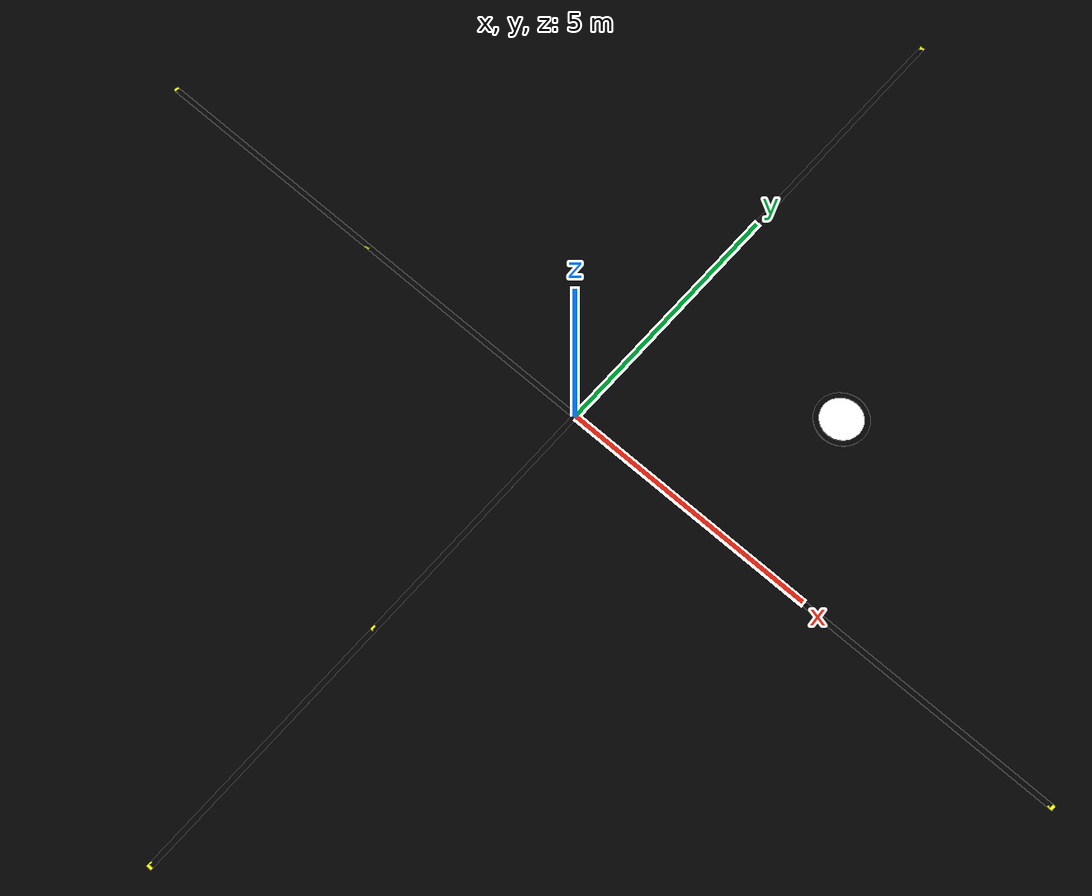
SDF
<sdf version="1.6">
 <world name="empty_world">
  <physics name="1ms" type="ignored">
   <max_step_size>0.001</max_step_size>
   <real_time_factor>1.0</real_time_factor>
   <gravity>0 0 -9.81</gravity>
  </physics>
  <light type="directional" name="sun">
   <pose>0 0 10 0 0 0</pose>
   <diffuse>0.8 0.8 0.8 1</diffuse>
   <specular>0.2 0.2 0.2 1</specular>
   <attenuation>
    <range>1000</range>
    <constant>0.9</constant>
    <linear>0.01</linear>
    <quadratic>0.001</quadratic>
   </attenuation>
   <direction>-0.5 0.1 -0.9</direction>
  </light>
  <model name="ground_plane">
   <static>true</static>
   <link name="link">
    <collision name="collision">
     <geometry><plane><normal>0 0 1</normal><size>100 100</size></plane></geometry>
     <surface><friction><ode><friction><ode><mu>0.9</mu><mu2>0.9</mu2></ode></friction></ode></friction></surface>
    </collision>
    <visual name="visual">
     <geometry><plane><normal>0 0 1</normal><size>100 100</size></plane></geometry>
     <surface><friction><ode><friction><ode><mu>0.9</mu><mu2>0.9</mu2></ode></friction></ode></friction></surface>
     <material><ambient>0 0 0 0</ambient><diffuse>0 0 0 0</diffuse><specular>0 0 0 0</specular></material>
    </visual>
   </link>
  </model>
  <model name="marcas_amarillas_rectas">
   <static>true</static>
   <link name="link">
    <visual name="marca_1">
     <pose>-5 0 0 0 0 0</pose>
     <geometry><plane><normal>0 0 1</normal><size>0.1 0.1</size></plane></geometry>
     <surface><friction><ode><friction><ode><mu>0.9</mu><mu2>0.9</mu2></ode></friction></ode></friction></surface>
     <material>
      <ambient>1 1 0 1</ambient>
      <specular>1 1 0 1</specular>
      <emissive>1 1 0 1</emissive>
      <diffuse>1 1 0 1</diffuse>
     </material>
    </visual>
    <visual name="marca_2">
     <geometry><plane><normal>0 0 1</normal><size>0.1 0.1</size></plane></geometry>
     <surface><friction><ode><friction><ode><mu>0.9</mu><mu2>0.9</mu2></ode></friction></ode></friction></surface>
     <material>
      <ambient>1 1 0 1</ambient>
      <specular>1 1 0 1</specular>
      <emissive>1 1 0 1</emissive>
      <diffuse>1 1 0 1</diffuse>
     </material>
    </visual>
    <visual name="marca_3">
     <pose>5 0 0 0 0 0</pose>
     <geometry><plane><normal>0 0 1</normal><size>0.1 0.1</size></plane></geometry>
     <surface><friction><ode><friction><ode><mu>0.9</mu><mu2>0.9</mu2></ode></friction></ode></friction></surface>
     <material>
      <ambient>1 1 0 1</ambient>
      <specular>1 1 0 1</specular>
      <emissive>1 1 0 1</emissive>
      <diffuse>1 1 0 1</diffuse>
     </material>
    </visual>
    <visual name="marca_4">
     <pose>10 0 0 0 0 0</pose>
     <geometry><plane><normal>0 0 1</normal><size>0.1 0.1</size></plane></geometry>
     <surface><friction><ode><friction><ode><mu>0.9</mu><mu2>0.9</mu2></ode></friction></ode></friction></surface>
     <material>
      <ambient>1 1 0 1</ambient>
      <specular>1 1 0 1</specular>
      <emissive>1 1 0 1</emissive>
      <diffuse>1 1 0 1</diffuse>
     </material>
    </visual>
    <visual name="marca_5">
     <pose>-10 0 0 0 0 0</pose>
     <geometry><plane><normal>0 0 1</normal><size>0.1 0.1</size></plane></geometry>
     <surface><friction><ode><friction><ode><mu>0.9</mu><mu2>0.9</mu2></ode></friction></ode></friction></surface>
     <material>
      <ambient>1 1 0 1</ambient>
      <specular>1 1 0 1</specular>
      <emissive>1 1 0 1</emissive>
      <diffuse>1 1 0 1</diffuse>
     </material>
    </visual>
   </link>
  </model>
  <model name="linea_negra_recta">
   <static>true</static>
   <link name="link">
    <visual name="line_visual">
     <geometry><plane><normal>0 0 1</normal><size>20 0.1</size></plane></geometry>
     <surface><friction><ode><friction><ode><mu>0.9</mu><mu2>0.9</mu2></ode></friction></ode></friction></surface>
     <material>
      <ambient>0 0 0 1</ambient>
      <specular>0 0 0 1</specular>
      <emissive>0 0 0 1</emissive>
      <diffuse>0 0 0 1</diffuse>
     </material>
    </visual>
   </link>
  </model>
  <model name="marcas_amarillas_lateral">
   <static>true</static>
   <link name="link">
    <visual name="marca_1_">
     <pose>0 -5 0 0 0 0</pose>
     <geometry><plane><normal>0 0 1</normal><size>0.1 0.1</size></plane></geometry>
     <surface><friction><ode><friction><ode><mu>0.9</mu><mu2>0.9</mu2></ode></friction></ode></friction></surface>
     <material>
      <ambient>1 1 0 1</ambient>
      <specular>1 1 0 1</specular>
      <emissive>1 1 0 1</emissive>
      <diffuse>1 1 0 1</diffuse>
     </material>
    </visual>
    <visual name="marca_2_">
     <geometry><plane><normal>0 0 1</normal><size>0.1 0.1</size></plane></geometry>
     <surface><friction><ode><friction><ode><mu>0.9</mu><mu2>0.9</mu2></ode></friction></ode></friction></surface>
     <material>
      <ambient>1 1 0 1</ambient>
      <specular>1 1 0 1</specular>
      <emissive>1 1 0 1</emissive>
      <diffuse>1 1 0 1</diffuse>
     </material>
    </visual>
    <visual name="marca_3_">
     <pose>0 5 0 0 0 0</pose>
     <geometry><plane><normal>0 0 1</normal><size>0.1 0.1</size></plane></geometry>
     <surface><friction><ode><friction><ode><mu>0.9</mu><mu2>0.9</mu2></ode></friction></ode></friction></surface>
     <material>
      <ambient>1 1 0 1</ambient>
      <specular>1 1 0 1</specular>
      <emissive>1 1 0 1</emissive>
      <diffuse>1 1 0 1</diffuse>
     </material>
    </visual>
    <visual name="marca_4_">
     <pose>0 10 0 0 0 0</pose>
     <geometry><plane><normal>0 0 1</normal><size>0.1 0.1</size></plane></geometry>
     <surface><friction><ode><friction><ode><mu>0.9</mu><mu2>0.9</mu2></ode></friction></ode></friction></surface>
     <material>
      <ambient>1 1 0 1</ambient>
      <specular>1 1 0 1</specular>
      <emissive>1 1 0 1</emissive>
      <diffuse>1 1 0 1</diffuse>
     </material>
    </visual>
    <visual name="marca_5_">
     <pose>0 -10 0 0 0 0</pose>
     <geometry><plane><normal>0 0 1</normal><size>0.1 0.1</size></plane></geometry>
     <surface><friction><ode><friction><ode><mu>0.9</mu><mu2>0.9</mu2></ode></friction></ode></friction></surface>
     <material>
      <ambient>1 1 0 1</ambient>
      <specular>1 1 0 1</specular>
      <emissive>1 1 0 1</emissive>
      <diffuse>1 1 0 1</diffuse>
     </material>
    </visual>
   </link>
  </model>
  <model name="linea_negra_lateral">
   <static>true</static>
   <link name="link">
    <visual name="line_visual_lateral">
     <geometry><plane><normal>0 0 1</normal><size>0.1 20</size></plane></geometry>
     <surface><friction><ode><friction><ode><mu>0.9</mu><mu2>0.9</mu2></ode></friction></ode></friction></surface>
     <material>
      <ambient>0 0 0 1</ambient>
      <specular>0 0 0 1</specular>
      <emissive>0 0 0 1</emissive>
      <diffuse>0 0 0 1</diffuse>
     </material>
    </visual>
   </link>
  </model>
  <model name="circulo_negro">
   <static>true</static>
   <link name="link">
    <visual name="circulo_visual">
     <pose>3.5 3 0.01 0 0 0</pose>
     <geometry><cylinder><radius>0.5</radius><length>0.01</length></cylinder></geometry>
     <surface><friction><ode><friction><ode><mu>0.9</mu><mu2>0.9</mu2></ode></friction></ode></friction></surface>
     <material>
      <ambient>0 0 0 1</ambient>
      <specular>0 0 0 1</specular>
      <emissive>0 0 0 1</emissive>
      <diffuse>0 0 0 1</diffuse>
     </material>
    </visual>
    <visual name="circulo_interior">
     <pose>3.5 3 0.015 0 0 0</pose>
     <geometry><cylinder><radius>0.4</radius><length>0.01</length></cylinder></geometry>
     <surface><friction><ode><friction><ode><mu>0.9</mu><mu2>0.9</mu2></ode></friction></ode></friction></surface>
     <material>
      <ambient>1 1 1 1</ambient>
      <specular>1 1 1 1</specular>
      <emissive>1 1 1 1</emissive>
      <diffuse>1 1 1 1</diffuse>
     </material>
    </visual>
   </link>
  </model>
 </world>
</sdf>
